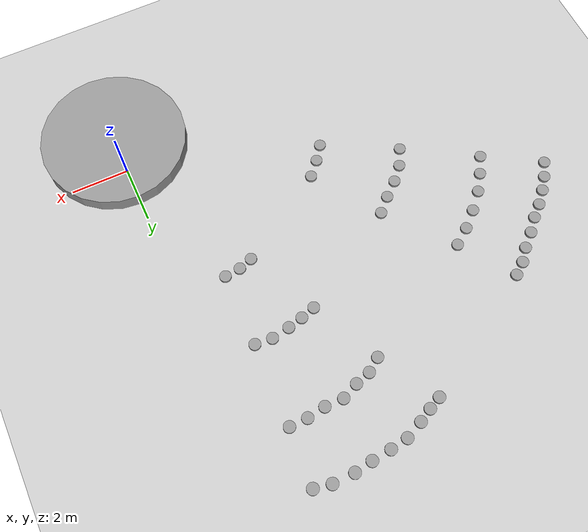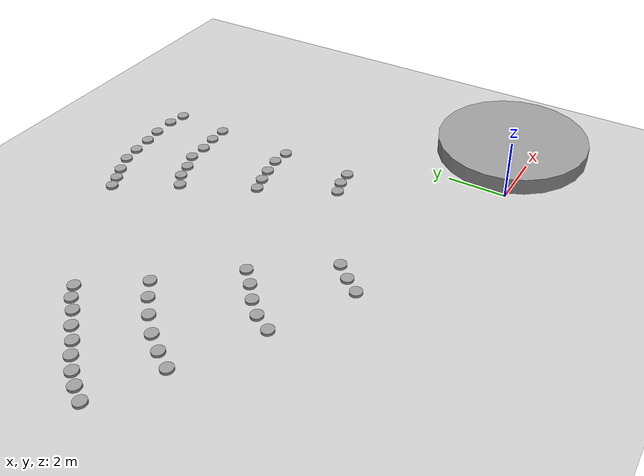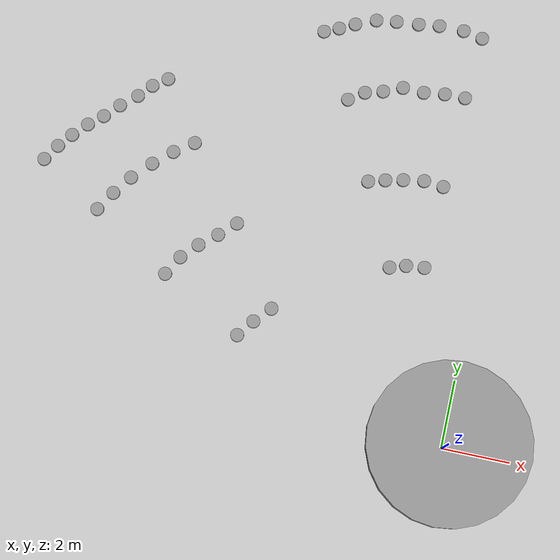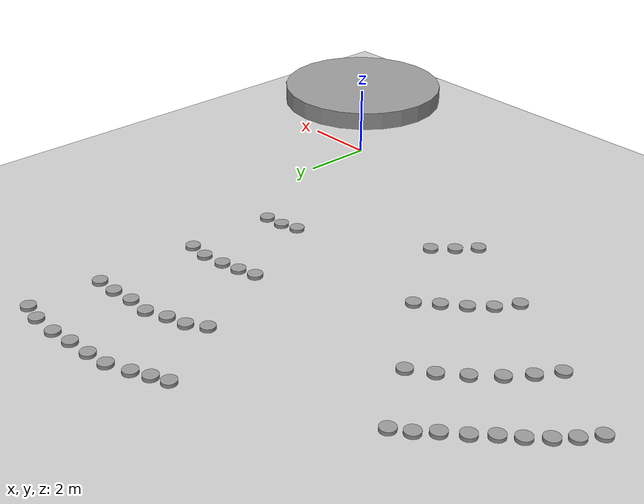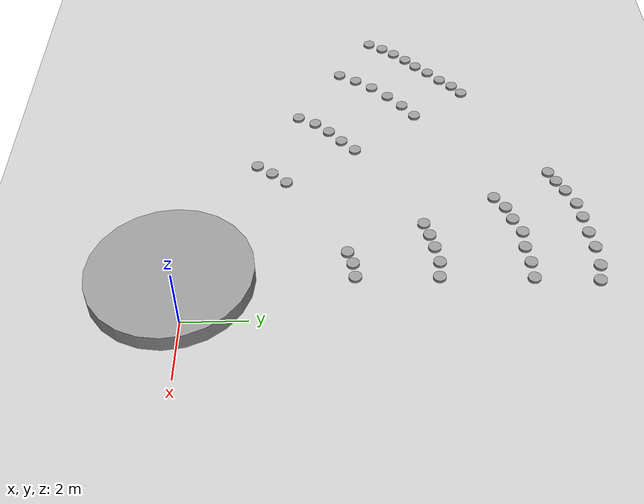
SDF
<sdf version="1.6">
 <world name="default">
  <model name="ground_plane">
   <static>1</static>
   <link name="link">
    <collision name="collision">
     <geometry><plane><normal>0 0 1</normal><size>100 100</size></plane></geometry>
     <surface><friction><ode><mu>100</mu><mu2>50</mu2></ode></friction></surface>
    </collision>
    <visual name="visual">
     <cast_shadows>0</cast_shadows>
     <geometry><plane><normal>0 0 1</normal><size>100 100</size></plane></geometry>
     <material>
      <script><uri>file://media/materials/scripts/gazebo.material</uri><name>Gazebo/Grey</name></script>
     </material>
    </visual>
   </link>
  </model>
  <model name="unit_cylinder_1_clone_clone_13_clone_56_clone_34_clone_94">
   <pose>-5.69803 2.92873 0.048247 0 -0 0.015201</pose>
   <link name="link">
    <inertial>
     <mass>1</mass>
     <inertia><ixx>0.145833</ixx><ixy>0</ixy><ixz>0</ixz><iyy>0.145833</iyy><iyz>0</iyz><izz>0.125</izz></inertia>
    </inertial>
    <collision name="collision">
     <geometry><cylinder><radius>0.20005</radius><length>0.0965019</length></cylinder></geometry>
    </collision>
    <visual name="visual">
     <geometry><cylinder><radius>0.20005</radius><length>0.0965019</length></cylinder></geometry>
     <material>
      <script><name>Gazebo/Grey</name><uri>file://media/materials/scripts/gazebo.material</uri></script>
     </material>
    </visual>
   </link>
  </model>
  <model name="unit_cylinder_1_clone_clone_13_clone_56_clone_34_clone_95">
   <pose>-6.13572 2.44785 0.048243 -1e-06 1e-06 0.015201</pose>
   <link name="link">
    <inertial>
     <mass>1</mass>
     <inertia><ixx>0.145833</ixx><ixy>0</ixy><ixz>0</ixz><iyy>0.145833</iyy><iyz>0</iyz><izz>0.125</izz></inertia>
    </inertial>
    <collision name="collision">
     <geometry><cylinder><radius>0.20005</radius><length>0.0965019</length></cylinder></geometry>
    </collision>
    <visual name="visual">
     <geometry><cylinder><radius>0.20005</radius><length>0.0965019</length></cylinder></geometry>
     <material>
      <script><name>Gazebo/Grey</name><uri>file://media/materials/scripts/gazebo.material</uri></script>
     </material>
    </visual>
   </link>
  </model>
  <model name="unit_cylinder_1_clone_clone_13_clone_56_clone_34_clone_96">
   <pose>-6.51016 1.94888 0.048242 -2e-06 2e-06 0.015201</pose>
   <link name="link">
    <inertial>
     <mass>1</mass>
     <inertia><ixx>0.145833</ixx><ixy>0</ixy><ixz>0</ixz><iyy>0.145833</iyy><iyz>0</iyz><izz>0.125</izz></inertia>
    </inertial>
    <collision name="collision">
     <geometry><cylinder><radius>0.20005</radius><length>0.0965019</length></cylinder></geometry>
    </collision>
    <visual name="visual">
     <geometry><cylinder><radius>0.20005</radius><length>0.0965019</length></cylinder></geometry>
     <material>
      <script><name>Gazebo/Grey</name><uri>file://media/materials/scripts/gazebo.material</uri></script>
     </material>
    </visual>
   </link>
  </model>
  <model name="unit_cylinder_1_clone_clone_13_clone_56_clone_34_clone_97">
   <pose>-8.98819 3.27436 0.048243 -1e-06 1e-06 0.015201</pose>
   <link name="link">
    <inertial>
     <mass>1</mass>
     <inertia><ixx>0.145833</ixx><ixy>0</ixy><ixz>0</ixz><iyy>0.145833</iyy><iyz>0</iyz><izz>0.125</izz></inertia>
    </inertial>
    <collision name="collision">
     <geometry><cylinder><radius>0.20005</radius><length>0.0965019</length></cylinder></geometry>
    </collision>
    <visual name="visual">
     <geometry><cylinder><radius>0.20005</radius><length>0.0965019</length></cylinder></geometry>
     <material>
      <script><name>Gazebo/Grey</name><uri>file://media/materials/scripts/gazebo.material</uri></script>
     </material>
    </visual>
   </link>
  </model>
  <model name="unit_cylinder_1_clone_clone_13_clone_56_clone_34_clone_98">
   <pose>-8.6629 3.85528 0.048243 -1e-06 1e-06 0.015201</pose>
   <link name="link">
    <inertial>
     <mass>1</mass>
     <inertia><ixx>0.145833</ixx><ixy>0</ixy><ixz>0</ixz><iyy>0.145833</iyy><iyz>0</iyz><izz>0.125</izz></inertia>
    </inertial>
    <collision name="collision">
     <geometry><cylinder><radius>0.20005</radius><length>0.0965019</length></cylinder></geometry>
    </collision>
    <visual name="visual">
     <geometry><cylinder><radius>0.20005</radius><length>0.0965019</length></cylinder></geometry>
     <material>
      <script><name>Gazebo/Grey</name><uri>file://media/materials/scripts/gazebo.material</uri></script>
     </material>
    </visual>
   </link>
  </model>
  <model name="unit_cylinder_1_clone_clone_13_clone_56_clone_34_clone_99">
   <pose>-8.21961 4.32799 0.048242 -2e-06 2e-06 0.015201</pose>
   <link name="link">
    <inertial>
     <mass>1</mass>
     <inertia><ixx>0.145833</ixx><ixy>0</ixy><ixz>0</ixz><iyy>0.145833</iyy><iyz>0</iyz><izz>0.125</izz></inertia>
    </inertial>
    <collision name="collision">
     <geometry><cylinder><radius>0.20005</radius><length>0.0965019</length></cylinder></geometry>
    </collision>
    <visual name="visual">
     <geometry><cylinder><radius>0.20005</radius><length>0.0965019</length></cylinder></geometry>
     <material>
      <script><name>Gazebo/Grey</name><uri>file://media/materials/scripts/gazebo.material</uri></script>
     </material>
    </visual>
   </link>
  </model>
  <model name="unit_cylinder_1_clone_clone_13_clone_56_clone_34_clone_100">
   <pose>-7.71777 4.75222 0.048243 -1e-06 1e-06 0.015201</pose>
   <link name="link">
    <inertial>
     <mass>1</mass>
     <inertia><ixx>0.145833</ixx><ixy>0</ixy><ixz>0</ixz><iyy>0.145833</iyy><iyz>0</iyz><izz>0.125</izz></inertia>
    </inertial>
    <collision name="collision">
     <geometry><cylinder><radius>0.20005</radius><length>0.0965019</length></cylinder></geometry>
    </collision>
    <visual name="visual">
     <geometry><cylinder><radius>0.20005</radius><length>0.0965019</length></cylinder></geometry>
     <material>
      <script><name>Gazebo/Grey</name><uri>file://media/materials/scripts/gazebo.material</uri></script>
     </material>
    </visual>
   </link>
  </model>
  <model name="unit_cylinder_1_clone_clone_13_clone_56_clone_34_clone_101">
   <pose>-7.24676 5.20596 0.048242 -2e-06 2e-06 0.015201</pose>
   <link name="link">
    <inertial>
     <mass>1</mass>
     <inertia><ixx>0.145833</ixx><ixy>0</ixy><ixz>0</ixz><iyy>0.145833</iyy><iyz>0</iyz><izz>0.125</izz></inertia>
    </inertial>
    <collision name="collision">
     <geometry><cylinder><radius>0.20005</radius><length>0.0965019</length></cylinder></geometry>
    </collision>
    <visual name="visual">
     <geometry><cylinder><radius>0.20005</radius><length>0.0965019</length></cylinder></geometry>
     <material>
      <script><name>Gazebo/Grey</name><uri>file://media/materials/scripts/gazebo.material</uri></script>
     </material>
    </visual>
   </link>
  </model>
  <model name="unit_cylinder_1_clone_clone_13_clone_56_clone_34_clone_102">
   <pose>-11.4033 4.74205 0.048242 -2e-06 2e-06 0.015201</pose>
   <link name="link">
    <inertial>
     <mass>1</mass>
     <inertia><ixx>0.145833</ixx><ixy>0</ixy><ixz>0</ixz><iyy>0.145833</iyy><iyz>0</iyz><izz>0.125</izz></inertia>
    </inertial>
    <collision name="collision">
     <geometry><cylinder><radius>0.20005</radius><length>0.0965019</length></cylinder></geometry>
    </collision>
    <visual name="visual">
     <geometry><cylinder><radius>0.20005</radius><length>0.0965019</length></cylinder></geometry>
     <material>
      <script><name>Gazebo/Grey</name><uri>file://media/materials/scripts/gazebo.material</uri></script>
     </material>
    </visual>
   </link>
  </model>
  <model name="unit_cylinder_1_clone_clone_13_clone_56_clone_34_clone_103">
   <pose>-11.0512 5.32498 0.048242 -2e-06 2e-06 0.015201</pose>
   <link name="link">
    <inertial>
     <mass>1</mass>
     <inertia><ixx>0.145833</ixx><ixy>0</ixy><ixz>0</ixz><iyy>0.145833</iyy><iyz>0</iyz><izz>0.125</izz></inertia>
    </inertial>
    <collision name="collision">
     <geometry><cylinder><radius>0.20005</radius><length>0.0965019</length></cylinder></geometry>
    </collision>
    <visual name="visual">
     <geometry><cylinder><radius>0.20005</radius><length>0.0965019</length></cylinder></geometry>
     <material>
      <script><name>Gazebo/Grey</name><uri>file://media/materials/scripts/gazebo.material</uri></script>
     </material>
    </visual>
   </link>
  </model>
  <model name="unit_cylinder_1_clone_clone_13_clone_56_clone_34_clone_104">
   <pose>-10.6435 5.89471 0.048242 -2e-06 2e-06 0.015201</pose>
   <link name="link">
    <inertial>
     <mass>1</mass>
     <inertia><ixx>0.145833</ixx><ixy>0</ixy><ixz>0</ixz><iyy>0.145833</iyy><iyz>0</iyz><izz>0.125</izz></inertia>
    </inertial>
    <collision name="collision">
     <geometry><cylinder><radius>0.20005</radius><length>0.0965019</length></cylinder></geometry>
    </collision>
    <visual name="visual">
     <geometry><cylinder><radius>0.20005</radius><length>0.0965019</length></cylinder></geometry>
     <material>
      <script><name>Gazebo/Grey</name><uri>file://media/materials/scripts/gazebo.material</uri></script>
     </material>
    </visual>
   </link>
  </model>
  <model name="unit_cylinder_1_clone_clone_13_clone_56_clone_34_clone_105">
   <pose>-10.1223 6.44528 0.048242 -2e-06 2e-06 0.015201</pose>
   <link name="link">
    <inertial>
     <mass>1</mass>
     <inertia><ixx>0.145833</ixx><ixy>0</ixy><ixz>0</ixz><iyy>0.145833</iyy><iyz>0</iyz><izz>0.125</izz></inertia>
    </inertial>
    <collision name="collision">
     <geometry><cylinder><radius>0.20005</radius><length>0.0965019</length></cylinder></geometry>
    </collision>
    <visual name="visual">
     <geometry><cylinder><radius>0.20005</radius><length>0.0965019</length></cylinder></geometry>
     <material>
      <script><name>Gazebo/Grey</name><uri>file://media/materials/scripts/gazebo.material</uri></script>
     </material>
    </visual>
   </link>
  </model>
  <model name="unit_cylinder_1_clone_clone_13_clone_56_clone_34_clone_106">
   <pose>-9.58355 6.93102 0.048243 -1e-06 1e-06 0.015201</pose>
   <link name="link">
    <inertial>
     <mass>1</mass>
     <inertia><ixx>0.145833</ixx><ixy>0</ixy><ixz>0</ixz><iyy>0.145833</iyy><iyz>0</iyz><izz>0.125</izz></inertia>
    </inertial>
    <collision name="collision">
     <geometry><cylinder><radius>0.20005</radius><length>0.0965019</length></cylinder></geometry>
    </collision>
    <visual name="visual">
     <geometry><cylinder><radius>0.20005</radius><length>0.0965019</length></cylinder></geometry>
     <material>
      <script><name>Gazebo/Grey</name><uri>file://media/materials/scripts/gazebo.material</uri></script>
     </material>
    </visual>
   </link>
  </model>
  <model name="unit_cylinder_1_clone_clone_13_clone_56_clone_34_clone_107">
   <pose>-9.01988 7.3373 0.048243 -1e-06 1e-06 0.015201</pose>
   <link name="link">
    <inertial>
     <mass>1</mass>
     <inertia><ixx>0.145833</ixx><ixy>0</ixy><ixz>0</ixz><iyy>0.145833</iyy><iyz>0</iyz><izz>0.125</izz></inertia>
    </inertial>
    <collision name="collision">
     <geometry><cylinder><radius>0.20005</radius><length>0.0965019</length></cylinder></geometry>
    </collision>
    <visual name="visual">
     <geometry><cylinder><radius>0.20005</radius><length>0.0965019</length></cylinder></geometry>
     <material>
      <script><name>Gazebo/Grey</name><uri>file://media/materials/scripts/gazebo.material</uri></script>
     </material>
    </visual>
   </link>
  </model>
  <model name="unit_cylinder_1_clone_clone_13_clone_56_clone_34_clone_108">
   <pose>-13.3109 5.89162 0.048242 -2e-06 2e-06 0.015201</pose>
   <link name="link">
    <inertial>
     <mass>1</mass>
     <inertia><ixx>0.145833</ixx><ixy>0</ixy><ixz>0</ixz><iyy>0.145833</iyy><iyz>0</iyz><izz>0.125</izz></inertia>
    </inertial>
    <collision name="collision">
     <geometry><cylinder><radius>0.20005</radius><length>0.0965019</length></cylinder></geometry>
    </collision>
    <visual name="visual">
     <geometry><cylinder><radius>0.20005</radius><length>0.0965019</length></cylinder></geometry>
     <material>
      <script><name>Gazebo/Grey</name><uri>file://media/materials/scripts/gazebo.material</uri></script>
     </material>
    </visual>
   </link>
  </model>
  <model name="unit_cylinder_1_clone_clone_13_clone_56_clone_34_clone_109">
   <pose>-13.0053 6.37454 0.048245 -1e-06 1e-06 0.015201</pose>
   <link name="link">
    <inertial>
     <mass>1</mass>
     <inertia><ixx>0.145833</ixx><ixy>0</ixy><ixz>0</ixz><iyy>0.145833</iyy><iyz>0</iyz><izz>0.125</izz></inertia>
    </inertial>
    <collision name="collision">
     <geometry><cylinder><radius>0.20005</radius><length>0.0965019</length></cylinder></geometry>
    </collision>
    <visual name="visual">
     <geometry><cylinder><radius>0.20005</radius><length>0.0965019</length></cylinder></geometry>
     <material>
      <script><name>Gazebo/Grey</name><uri>file://media/materials/scripts/gazebo.material</uri></script>
     </material>
    </visual>
   </link>
  </model>
  <model name="unit_cylinder_1_clone_clone_13_clone_56_clone_34_clone_110">
   <pose>-12.6721 6.79516 0.048242 -2e-06 2e-06 0.015201</pose>
   <link name="link">
    <inertial>
     <mass>1</mass>
     <inertia><ixx>0.145833</ixx><ixy>0</ixy><ixz>0</ixz><iyy>0.145833</iyy><iyz>0</iyz><izz>0.125</izz></inertia>
    </inertial>
    <collision name="collision">
     <geometry><cylinder><radius>0.20005</radius><length>0.0965019</length></cylinder></geometry>
    </collision>
    <visual name="visual">
     <geometry><cylinder><radius>0.20005</radius><length>0.0965019</length></cylinder></geometry>
     <material>
      <script><name>Gazebo/Grey</name><uri>file://media/materials/scripts/gazebo.material</uri></script>
     </material>
    </visual>
   </link>
  </model>
  <model name="unit_cylinder_1_clone_clone_13_clone_56_clone_34_clone_111">
   <pose>-12.2853 7.20932 0.048242 -2e-06 2e-06 0.015201</pose>
   <link name="link">
    <inertial>
     <mass>1</mass>
     <inertia><ixx>0.145833</ixx><ixy>0</ixy><ixz>0</ixz><iyy>0.145833</iyy><iyz>0</iyz><izz>0.125</izz></inertia>
    </inertial>
    <collision name="collision">
     <geometry><cylinder><radius>0.20005</radius><length>0.0965019</length></cylinder></geometry>
    </collision>
    <visual name="visual">
     <geometry><cylinder><radius>0.20005</radius><length>0.0965019</length></cylinder></geometry>
     <material>
      <script><name>Gazebo/Grey</name><uri>file://media/materials/scripts/gazebo.material</uri></script>
     </material>
    </visual>
   </link>
  </model>
  <model name="unit_cylinder_1_clone_clone_13_clone_56_clone_34_clone_112">
   <pose>-11.8779 7.56485 0.048242 -2e-06 2e-06 0.015201</pose>
   <link name="link">
    <inertial>
     <mass>1</mass>
     <inertia><ixx>0.145833</ixx><ixy>0</ixy><ixz>0</ixz><iyy>0.145833</iyy><iyz>0</iyz><izz>0.125</izz></inertia>
    </inertial>
    <collision name="collision">
     <geometry><cylinder><radius>0.20005</radius><length>0.0965019</length></cylinder></geometry>
    </collision>
    <visual name="visual">
     <geometry><cylinder><radius>0.20005</radius><length>0.0965019</length></cylinder></geometry>
     <material>
      <script><name>Gazebo/Grey</name><uri>file://media/materials/scripts/gazebo.material</uri></script>
     </material>
    </visual>
   </link>
  </model>
  <model name="unit_cylinder_1_clone_clone_13_clone_56_clone_34_clone_113">
   <pose>-11.4788 7.98962 0.048242 -2e-06 2e-06 0.015201</pose>
   <link name="link">
    <inertial>
     <mass>1</mass>
     <inertia><ixx>0.145833</ixx><ixy>0</ixy><ixz>0</ixz><iyy>0.145833</iyy><iyz>0</iyz><izz>0.125</izz></inertia>
    </inertial>
    <collision name="collision">
     <geometry><cylinder><radius>0.20005</radius><length>0.0965019</length></cylinder></geometry>
    </collision>
    <visual name="visual">
     <geometry><cylinder><radius>0.20005</radius><length>0.0965019</length></cylinder></geometry>
     <material>
      <script><name>Gazebo/Grey</name><uri>file://media/materials/scripts/gazebo.material</uri></script>
     </material>
    </visual>
   </link>
  </model>
  <model name="unit_cylinder_1_clone_clone_13_clone_56_clone_34_clone_114">
   <pose>-11.0185 8.39533 0.048243 -1e-06 1e-06 0.015201</pose>
   <link name="link">
    <inertial>
     <mass>1</mass>
     <inertia><ixx>0.145833</ixx><ixy>0</ixy><ixz>0</ixz><iyy>0.145833</iyy><iyz>0</iyz><izz>0.125</izz></inertia>
    </inertial>
    <collision name="collision">
     <geometry><cylinder><radius>0.20005</radius><length>0.0965019</length></cylinder></geometry>
    </collision>
    <visual name="visual">
     <geometry><cylinder><radius>0.20005</radius><length>0.0965019</length></cylinder></geometry>
     <material>
      <script><name>Gazebo/Grey</name><uri>file://media/materials/scripts/gazebo.material</uri></script>
     </material>
    </visual>
   </link>
  </model>
  <model name="unit_cylinder_1_clone_clone_13_clone_56_clone_34_clone_115">
   <pose>-10.6624 8.79636 0.048242 -2e-06 2e-06 0.015201</pose>
   <link name="link">
    <inertial>
     <mass>1</mass>
     <inertia><ixx>0.145833</ixx><ixy>0</ixy><ixz>0</ixz><iyy>0.145833</iyy><iyz>0</iyz><izz>0.125</izz></inertia>
    </inertial>
    <collision name="collision">
     <geometry><cylinder><radius>0.20005</radius><length>0.0965019</length></cylinder></geometry>
    </collision>
    <visual name="visual">
     <geometry><cylinder><radius>0.20005</radius><length>0.0965019</length></cylinder></geometry>
     <material>
      <script><name>Gazebo/Grey</name><uri>file://media/materials/scripts/gazebo.material</uri></script>
     </material>
    </visual>
   </link>
  </model>
  <model name="unit_cylinder_1_clone_clone_13_clone_56_clone_34_clone_116">
   <pose>-10.2466 9.10226 0.048242 -2e-06 2e-06 0.015201</pose>
   <link name="link">
    <inertial>
     <mass>1</mass>
     <inertia><ixx>0.145833</ixx><ixy>0</ixy><ixz>0</ixz><iyy>0.145833</iyy><iyz>0</iyz><izz>0.125</izz></inertia>
    </inertial>
    <collision name="collision">
     <geometry><cylinder><radius>0.20005</radius><length>0.0965019</length></cylinder></geometry>
    </collision>
    <visual name="visual">
     <geometry><cylinder><radius>0.20005</radius><length>0.0965019</length></cylinder></geometry>
     <material>
      <script><name>Gazebo/Grey</name><uri>file://media/materials/scripts/gazebo.material</uri></script>
     </material>
    </visual>
   </link>
  </model>
  <model name="unit_cylinder_1_clone_clone_13_clone_56_clone_34_clone_117">
   <pose>-1.54479 5.08627 0.048249 0 -0 0.015201</pose>
   <link name="link">
    <inertial>
     <mass>1</mass>
     <inertia><ixx>0.145833</ixx><ixy>0</ixy><ixz>0</ixz><iyy>0.145833</iyy><iyz>0</iyz><izz>0.125</izz></inertia>
    </inertial>
    <collision name="collision">
     <geometry><cylinder><radius>0.20005</radius><length>0.0965019</length></cylinder></geometry>
    </collision>
    <visual name="visual">
     <geometry><cylinder><radius>0.20005</radius><length>0.0965019</length></cylinder></geometry>
     <material>
      <script><name>Gazebo/Grey</name><uri>file://media/materials/scripts/gazebo.material</uri></script>
     </material>
    </visual>
   </link>
  </model>
  <model name="unit_cylinder_1_clone_clone_13_clone_56_clone_34_clone_118">
   <pose>-2.08342 5.0298 0.048243 -1e-06 1e-06 0.015201</pose>
   <link name="link">
    <inertial>
     <mass>1</mass>
     <inertia><ixx>0.145833</ixx><ixy>0</ixy><ixz>0</ixz><iyy>0.145833</iyy><iyz>0</iyz><izz>0.125</izz></inertia>
    </inertial>
    <collision name="collision">
     <geometry><cylinder><radius>0.20005</radius><length>0.0965019</length></cylinder></geometry>
    </collision>
    <visual name="visual">
     <geometry><cylinder><radius>0.20005</radius><length>0.0965019</length></cylinder></geometry>
     <material>
      <script><name>Gazebo/Grey</name><uri>file://media/materials/scripts/gazebo.material</uri></script>
     </material>
    </visual>
   </link>
  </model>
  <model name="unit_cylinder_1_clone_clone_13_clone_56_clone_34_clone_119">
   <pose>-2.5539 4.87322 0.048242 -2e-06 2e-06 0.015201</pose>
   <link name="link">
    <inertial>
     <mass>1</mass>
     <inertia><ixx>0.145833</ixx><ixy>0</ixy><ixz>0</ixz><iyy>0.145833</iyy><iyz>0</iyz><izz>0.125</izz></inertia>
    </inertial>
    <collision name="collision">
     <geometry><cylinder><radius>0.20005</radius><length>0.0965019</length></cylinder></geometry>
    </collision>
    <visual name="visual">
     <geometry><cylinder><radius>0.20005</radius><length>0.0965019</length></cylinder></geometry>
     <material>
      <script><name>Gazebo/Grey</name><uri>file://media/materials/scripts/gazebo.material</uri></script>
     </material>
    </visual>
   </link>
  </model>
  <model name="unit_cylinder_1_clone_clone_13_clone_56_clone_34_clone_119_clone">
   <pose>-3.20872 7.43844 0.048242 -2e-06 2e-06 0.015201</pose>
   <link name="link">
    <inertial>
     <mass>1</mass>
     <inertia><ixx>0.145833</ixx><ixy>0</ixy><ixz>0</ixz><iyy>0.145833</iyy><iyz>0</iyz><izz>0.125</izz></inertia>
    </inertial>
    <collision name="collision">
     <geometry><cylinder><radius>0.20005</radius><length>0.0965019</length></cylinder></geometry>
    </collision>
    <visual name="visual">
     <geometry><cylinder><radius>0.20005</radius><length>0.0965019</length></cylinder></geometry>
     <material>
      <script><name>Gazebo/Grey</name><uri>file://media/materials/scripts/gazebo.material</uri></script>
     </material>
    </visual>
   </link>
  </model>
  <model name="unit_cylinder_1_clone_clone_13_clone_56_clone_34_clone_119_clone_0">
   <pose>-3.70424 7.28994 0.048243 -1e-06 1e-06 0.015201</pose>
   <link name="link">
    <inertial>
     <mass>1</mass>
     <inertia><ixx>0.145833</ixx><ixy>0</ixy><ixz>0</ixz><iyy>0.145833</iyy><iyz>0</iyz><izz>0.125</izz></inertia>
    </inertial>
    <collision name="collision">
     <geometry><cylinder><radius>0.20005</radius><length>0.0965019</length></cylinder></geometry>
    </collision>
    <visual name="visual">
     <geometry><cylinder><radius>0.20005</radius><length>0.0965019</length></cylinder></geometry>
     <material>
      <script><name>Gazebo/Grey</name><uri>file://media/materials/scripts/gazebo.material</uri></script>
     </material>
    </visual>
   </link>
  </model>
  <model name="unit_cylinder_1_clone_clone_13_clone_56_clone_34_clone_119_clone_1">
   <pose>-2.68998 7.556 0.048242 -2e-06 2e-06 0.015201</pose>
   <link name="link">
    <inertial>
     <mass>1</mass>
     <inertia><ixx>0.145833</ixx><ixy>0</ixy><ixz>0</ixz><iyy>0.145833</iyy><iyz>0</iyz><izz>0.125</izz></inertia>
    </inertial>
    <collision name="collision">
     <geometry><cylinder><radius>0.20005</radius><length>0.0965019</length></cylinder></geometry>
    </collision>
    <visual name="visual">
     <geometry><cylinder><radius>0.20005</radius><length>0.0965019</length></cylinder></geometry>
     <material>
      <script><name>Gazebo/Grey</name><uri>file://media/materials/scripts/gazebo.material</uri></script>
     </material>
    </visual>
   </link>
  </model>
  <model name="unit_cylinder_1_clone_clone_13_clone_56_clone_34_clone_119_clone_2">
   <pose>-2.07302 7.66132 0.048242 -2e-06 2e-06 0.015201</pose>
   <link name="link">
    <inertial>
     <mass>1</mass>
     <inertia><ixx>0.145833</ixx><ixy>0</ixy><ixz>0</ixz><iyy>0.145833</iyy><iyz>0</iyz><izz>0.125</izz></inertia>
    </inertial>
    <collision name="collision">
     <geometry><cylinder><radius>0.20005</radius><length>0.0965019</length></cylinder></geometry>
    </collision>
    <visual name="visual">
     <geometry><cylinder><radius>0.20005</radius><length>0.0965019</length></cylinder></geometry>
     <material>
      <script><name>Gazebo/Grey</name><uri>file://media/materials/scripts/gazebo.material</uri></script>
     </material>
    </visual>
   </link>
  </model>
  <model name="unit_cylinder_1_clone_clone_13_clone_56_clone_34_clone_119_clone_3">
   <pose>-1.48036 7.60574 0.048242 -2e-06 2e-06 0.015201</pose>
   <link name="link">
    <inertial>
     <mass>1</mass>
     <inertia><ixx>0.145833</ixx><ixy>0</ixy><ixz>0</ixz><iyy>0.145833</iyy><iyz>0</iyz><izz>0.125</izz></inertia>
    </inertial>
    <collision name="collision">
     <geometry><cylinder><radius>0.20005</radius><length>0.0965019</length></cylinder></geometry>
    </collision>
    <visual name="visual">
     <geometry><cylinder><radius>0.20005</radius><length>0.0965019</length></cylinder></geometry>
     <material>
      <script><name>Gazebo/Grey</name><uri>file://media/materials/scripts/gazebo.material</uri></script>
     </material>
    </visual>
   </link>
  </model>
  <model name="unit_cylinder_1_clone_clone_13_clone_56_clone_34_clone_119_clone_4">
   <pose>-1.37641 10.4318 0.048246 0 -0 0.015201</pose>
   <link name="link">
    <inertial>
     <mass>1</mass>
     <inertia><ixx>0.145833</ixx><ixy>0</ixy><ixz>0</ixz><iyy>0.145833</iyy><iyz>0</iyz><izz>0.125</izz></inertia>
    </inertial>
    <collision name="collision">
     <geometry><cylinder><radius>0.20005</radius><length>0.0965019</length></cylinder></geometry>
    </collision>
    <visual name="visual">
     <geometry><cylinder><radius>0.20005</radius><length>0.0965019</length></cylinder></geometry>
     <material>
      <script><name>Gazebo/Grey</name><uri>file://media/materials/scripts/gazebo.material</uri></script>
     </material>
    </visual>
   </link>
  </model>
  <model name="unit_cylinder_1_clone_clone_13_clone_56_clone_34_clone_119_clone_5">
   <pose>-1.99641 10.423 0.048243 -1e-06 1e-06 0.015201</pose>
   <link name="link">
    <inertial>
     <mass>1</mass>
     <inertia><ixx>0.145833</ixx><ixy>0</ixy><ixz>0</ixz><iyy>0.145833</iyy><iyz>0</iyz><izz>0.125</izz></inertia>
    </inertial>
    <collision name="collision">
     <geometry><cylinder><radius>0.20005</radius><length>0.0965019</length></cylinder></geometry>
    </collision>
    <visual name="visual">
     <geometry><cylinder><radius>0.20005</radius><length>0.0965019</length></cylinder></geometry>
     <material>
      <script><name>Gazebo/Grey</name><uri>file://media/materials/scripts/gazebo.material</uri></script>
     </material>
    </visual>
   </link>
  </model>
  <model name="unit_cylinder_1_clone_clone_13_clone_56_clone_34_clone_119_clone_6">
   <pose>-2.62527 10.3337 0.048243 -1e-06 1e-06 0.015201</pose>
   <link name="link">
    <inertial>
     <mass>1</mass>
     <inertia><ixx>0.145833</ixx><ixy>0</ixy><ixz>0</ixz><iyy>0.145833</iyy><iyz>0</iyz><izz>0.125</izz></inertia>
    </inertial>
    <collision name="collision">
     <geometry><cylinder><radius>0.20005</radius><length>0.0965019</length></cylinder></geometry>
    </collision>
    <visual name="visual">
     <geometry><cylinder><radius>0.20005</radius><length>0.0965019</length></cylinder></geometry>
     <material>
      <script><name>Gazebo/Grey</name><uri>file://media/materials/scripts/gazebo.material</uri></script>
     </material>
    </visual>
   </link>
  </model>
  <model name="unit_cylinder_1_clone_clone_13_clone_56_clone_34_clone_119_clone_7">
   <pose>-3.26732 10.3495 0.048249 1e-06 -1e-06 0.015201</pose>
   <link name="link">
    <inertial>
     <mass>1</mass>
     <inertia><ixx>0.145833</ixx><ixy>0</ixy><ixz>0</ixz><iyy>0.145833</iyy><iyz>0</iyz><izz>0.125</izz></inertia>
    </inertial>
    <collision name="collision">
     <geometry><cylinder><radius>0.20005</radius><length>0.0965019</length></cylinder></geometry>
    </collision>
    <visual name="visual">
     <geometry><cylinder><radius>0.20005</radius><length>0.0965019</length></cylinder></geometry>
     <material>
      <script><name>Gazebo/Grey</name><uri>file://media/materials/scripts/gazebo.material</uri></script>
     </material>
    </visual>
   </link>
  </model>
  <model name="unit_cylinder_1_clone_clone_13_clone_56_clone_34_clone_119_clone_8">
   <pose>-3.82957 10.1104 0.048243 -1e-06 1e-06 0.015201</pose>
   <link name="link">
    <inertial>
     <mass>1</mass>
     <inertia><ixx>0.145833</ixx><ixy>0</ixy><ixz>0</ixz><iyy>0.145833</iyy><iyz>0</iyz><izz>0.125</izz></inertia>
    </inertial>
    <collision name="collision">
     <geometry><cylinder><radius>0.20005</radius><length>0.0965019</length></cylinder></geometry>
    </collision>
    <visual name="visual">
     <geometry><cylinder><radius>0.20005</radius><length>0.0965019</length></cylinder></geometry>
     <material>
      <script><name>Gazebo/Grey</name><uri>file://media/materials/scripts/gazebo.material</uri></script>
     </material>
    </visual>
   </link>
  </model>
  <model name="unit_cylinder_1_clone_clone_13_clone_56_clone_34_clone_119_clone_9">
   <pose>-4.35965 9.95634 0.048249 1e-06 -1e-06 0.015201</pose>
   <link name="link">
    <inertial>
     <mass>1</mass>
     <inertia><ixx>0.145833</ixx><ixy>0</ixy><ixz>0</ixz><iyy>0.145833</iyy><iyz>0</iyz><izz>0.125</izz></inertia>
    </inertial>
    <collision name="collision">
     <geometry><cylinder><radius>0.20005</radius><length>0.0965019</length></cylinder></geometry>
    </collision>
    <visual name="visual">
     <geometry><cylinder><radius>0.20005</radius><length>0.0965019</length></cylinder></geometry>
     <material>
      <script><name>Gazebo/Grey</name><uri>file://media/materials/scripts/gazebo.material</uri></script>
     </material>
    </visual>
   </link>
  </model>
  <model name="unit_cylinder_1_clone_clone_13_clone_56_clone_34_clone_119_clone_10">
   <pose>-4.81702 9.63559 0.048243 -1e-06 1e-06 0.015201</pose>
   <link name="link">
    <inertial>
     <mass>1</mass>
     <inertia><ixx>0.145833</ixx><ixy>0</ixy><ixz>0</ixz><iyy>0.145833</iyy><iyz>0</iyz><izz>0.125</izz></inertia>
    </inertial>
    <collision name="collision">
     <geometry><cylinder><radius>0.20005</radius><length>0.0965019</length></cylinder></geometry>
    </collision>
    <visual name="visual">
     <geometry><cylinder><radius>0.20005</radius><length>0.0965019</length></cylinder></geometry>
     <material>
      <script><name>Gazebo/Grey</name><uri>file://media/materials/scripts/gazebo.material</uri></script>
     </material>
    </visual>
   </link>
  </model>
  <model name="unit_cylinder_1_clone_clone_13_clone_56_clone_34_clone_119_clone_11">
   <pose>-5.96528 11.5732 0.048243 -1e-06 1e-06 0.015201</pose>
   <link name="link">
    <inertial>
     <mass>1</mass>
     <inertia><ixx>0.145833</ixx><ixy>0</ixy><ixz>0</ixz><iyy>0.145833</iyy><iyz>0</iyz><izz>0.125</izz></inertia>
    </inertial>
    <collision name="collision">
     <geometry><cylinder><radius>0.20005</radius><length>0.0965019</length></cylinder></geometry>
    </collision>
    <visual name="visual">
     <geometry><cylinder><radius>0.20005</radius><length>0.0965019</length></cylinder></geometry>
     <material>
      <script><name>Gazebo/Grey</name><uri>file://media/materials/scripts/gazebo.material</uri></script>
     </material>
    </visual>
   </link>
  </model>
  <model name="unit_cylinder_1_clone_clone_13_clone_56_clone_34_clone_119_clone_12">
   <pose>-5.53565 11.767 0.048243 -1e-06 1e-06 0.015201</pose>
   <link name="link">
    <inertial>
     <mass>1</mass>
     <inertia><ixx>0.145833</ixx><ixy>0</ixy><ixz>0</ixz><iyy>0.145833</iyy><iyz>0</iyz><izz>0.125</izz></inertia>
    </inertial>
    <collision name="collision">
     <geometry><cylinder><radius>0.20005</radius><length>0.0965019</length></cylinder></geometry>
    </collision>
    <visual name="visual">
     <geometry><cylinder><radius>0.20005</radius><length>0.0965019</length></cylinder></geometry>
     <material>
      <script><name>Gazebo/Grey</name><uri>file://media/materials/scripts/gazebo.material</uri></script>
     </material>
    </visual>
   </link>
  </model>
  <model name="unit_cylinder_1_clone_clone_13_clone_56_clone_34_clone_119_clone_13">
   <pose>-5.08477 12.0002 0.048242 -2e-06 2e-06 0.015201</pose>
   <link name="link">
    <inertial>
     <mass>1</mass>
     <inertia><ixx>0.145833</ixx><ixy>0</ixy><ixz>0</ixz><iyy>0.145833</iyy><iyz>0</iyz><izz>0.125</izz></inertia>
    </inertial>
    <collision name="collision">
     <geometry><cylinder><radius>0.20005</radius><length>0.0965019</length></cylinder></geometry>
    </collision>
    <visual name="visual">
     <geometry><cylinder><radius>0.20005</radius><length>0.0965019</length></cylinder></geometry>
     <material>
      <script><name>Gazebo/Grey</name><uri>file://media/materials/scripts/gazebo.material</uri></script>
     </material>
    </visual>
   </link>
  </model>
  <model name="unit_cylinder_1_clone_clone_13_clone_56_clone_34_clone_119_clone_14">
   <pose>-4.48242 12.258 0.048242 -2e-06 2e-06 0.015201</pose>
   <link name="link">
    <inertial>
     <mass>1</mass>
     <inertia><ixx>0.145833</ixx><ixy>0</ixy><ixz>0</ixz><iyy>0.145833</iyy><iyz>0</iyz><izz>0.125</izz></inertia>
    </inertial>
    <collision name="collision">
     <geometry><cylinder><radius>0.20005</radius><length>0.0965019</length></cylinder></geometry>
    </collision>
    <visual name="visual">
     <geometry><cylinder><radius>0.20005</radius><length>0.0965019</length></cylinder></geometry>
     <material>
      <script><name>Gazebo/Grey</name><uri>file://media/materials/scripts/gazebo.material</uri></script>
     </material>
    </visual>
   </link>
  </model>
  <model name="unit_cylinder_1_clone_clone_13_clone_56_clone_34_clone_119_clone_15">
   <pose>-3.87232 12.3446 0.048243 -1e-06 1e-06 0.015201</pose>
   <link name="link">
    <inertial>
     <mass>1</mass>
     <inertia><ixx>0.145833</ixx><ixy>0</ixy><ixz>0</ixz><iyy>0.145833</iyy><iyz>0</iyz><izz>0.125</izz></inertia>
    </inertial>
    <collision name="collision">
     <geometry><cylinder><radius>0.20005</radius><length>0.0965019</length></cylinder></geometry>
    </collision>
    <visual name="visual">
     <geometry><cylinder><radius>0.20005</radius><length>0.0965019</length></cylinder></geometry>
     <material>
      <script><name>Gazebo/Grey</name><uri>file://media/materials/scripts/gazebo.material</uri></script>
     </material>
    </visual>
   </link>
  </model>
  <model name="unit_cylinder_1_clone_clone_13_clone_56_clone_34_clone_119_clone_16">
   <pose>-3.2011 12.4052 0.048242 -2e-06 2e-06 0.015201</pose>
   <link name="link">
    <inertial>
     <mass>1</mass>
     <inertia><ixx>0.145833</ixx><ixy>0</ixy><ixz>0</ixz><iyy>0.145833</iyy><iyz>0</iyz><izz>0.125</izz></inertia>
    </inertial>
    <collision name="collision">
     <geometry><cylinder><radius>0.20005</radius><length>0.0965019</length></cylinder></geometry>
    </collision>
    <visual name="visual">
     <geometry><cylinder><radius>0.20005</radius><length>0.0965019</length></cylinder></geometry>
     <material>
      <script><name>Gazebo/Grey</name><uri>file://media/materials/scripts/gazebo.material</uri></script>
     </material>
    </visual>
   </link>
  </model>
  <model name="unit_cylinder_1_clone_clone_13_clone_56_clone_34_clone_119_clone_17">
   <pose>-2.57642 12.4939 0.048242 -2e-06 2e-06 0.015201</pose>
   <link name="link">
    <inertial>
     <mass>1</mass>
     <inertia><ixx>0.145833</ixx><ixy>0</ixy><ixz>0</ixz><iyy>0.145833</iyy><iyz>0</iyz><izz>0.125</izz></inertia>
    </inertial>
    <collision name="collision">
     <geometry><cylinder><radius>0.20005</radius><length>0.0965019</length></cylinder></geometry>
    </collision>
    <visual name="visual">
     <geometry><cylinder><radius>0.20005</radius><length>0.0965019</length></cylinder></geometry>
     <material>
      <script><name>Gazebo/Grey</name><uri>file://media/materials/scripts/gazebo.material</uri></script>
     </material>
    </visual>
   </link>
  </model>
  <model name="unit_cylinder_1_clone_clone_13_clone_56_clone_34_clone_119_clone_18">
   <pose>-1.82474 12.4971 0.048245 -1e-06 1e-06 0.015201</pose>
   <link name="link">
    <inertial>
     <mass>1</mass>
     <inertia><ixx>0.145833</ixx><ixy>0</ixy><ixz>0</ixz><iyy>0.145833</iyy><iyz>0</iyz><izz>0.125</izz></inertia>
    </inertial>
    <collision name="collision">
     <geometry><cylinder><radius>0.20005</radius><length>0.0965019</length></cylinder></geometry>
    </collision>
    <visual name="visual">
     <geometry><cylinder><radius>0.20005</radius><length>0.0965019</length></cylinder></geometry>
     <material>
      <script><name>Gazebo/Grey</name><uri>file://media/materials/scripts/gazebo.material</uri></script>
     </material>
    </visual>
   </link>
  </model>
  <model name="unit_cylinder_1_clone_clone_13_clone_56_clone_34_clone_119_clone_19">
   <pose>-1.23341 12.3779 0.048243 -1e-06 1e-06 0.015201</pose>
   <link name="link">
    <inertial>
     <mass>1</mass>
     <inertia><ixx>0.145833</ixx><ixy>0</ixy><ixz>0</ixz><iyy>0.145833</iyy><iyz>0</iyz><izz>0.125</izz></inertia>
    </inertial>
    <collision name="collision">
     <geometry><cylinder><radius>0.20005</radius><length>0.0965019</length></cylinder></geometry>
    </collision>
    <visual name="visual">
     <geometry><cylinder><radius>0.20005</radius><length>0.0965019</length></cylinder></geometry>
     <material>
      <script><name>Gazebo/Grey</name><uri>file://media/materials/scripts/gazebo.material</uri></script>
     </material>
    </visual>
   </link>
  </model>
  <model name="unit_cylinder_0_clone">
   <pose>0 0 2 0 0 -0.001136</pose>
   <link name="unit_cylinder_0_clone::link">
    <inertial>
     <mass>1</mass>
     <inertia><ixx>0.145833</ixx><ixy>0</ixy><ixz>0</ixz><iyy>0.145833</iyy><iyz>0</iyz><izz>0.125</izz></inertia>
    </inertial>
    <collision name="collision">
     <geometry><cylinder><radius>2.32751</radius><length>0.49573</length></cylinder></geometry>
    </collision>
    <visual name="visual">
     <geometry><cylinder><radius>2.32751</radius><length>0.49573</length></cylinder></geometry>
     <material>
      <script><name>Gazebo/Grey</name><uri>file://media/materials/scripts/gazebo.material</uri></script>
     </material>
    </visual>
    <gravity>0</gravity>
   </link>
  </model>
 </world>
</sdf>
